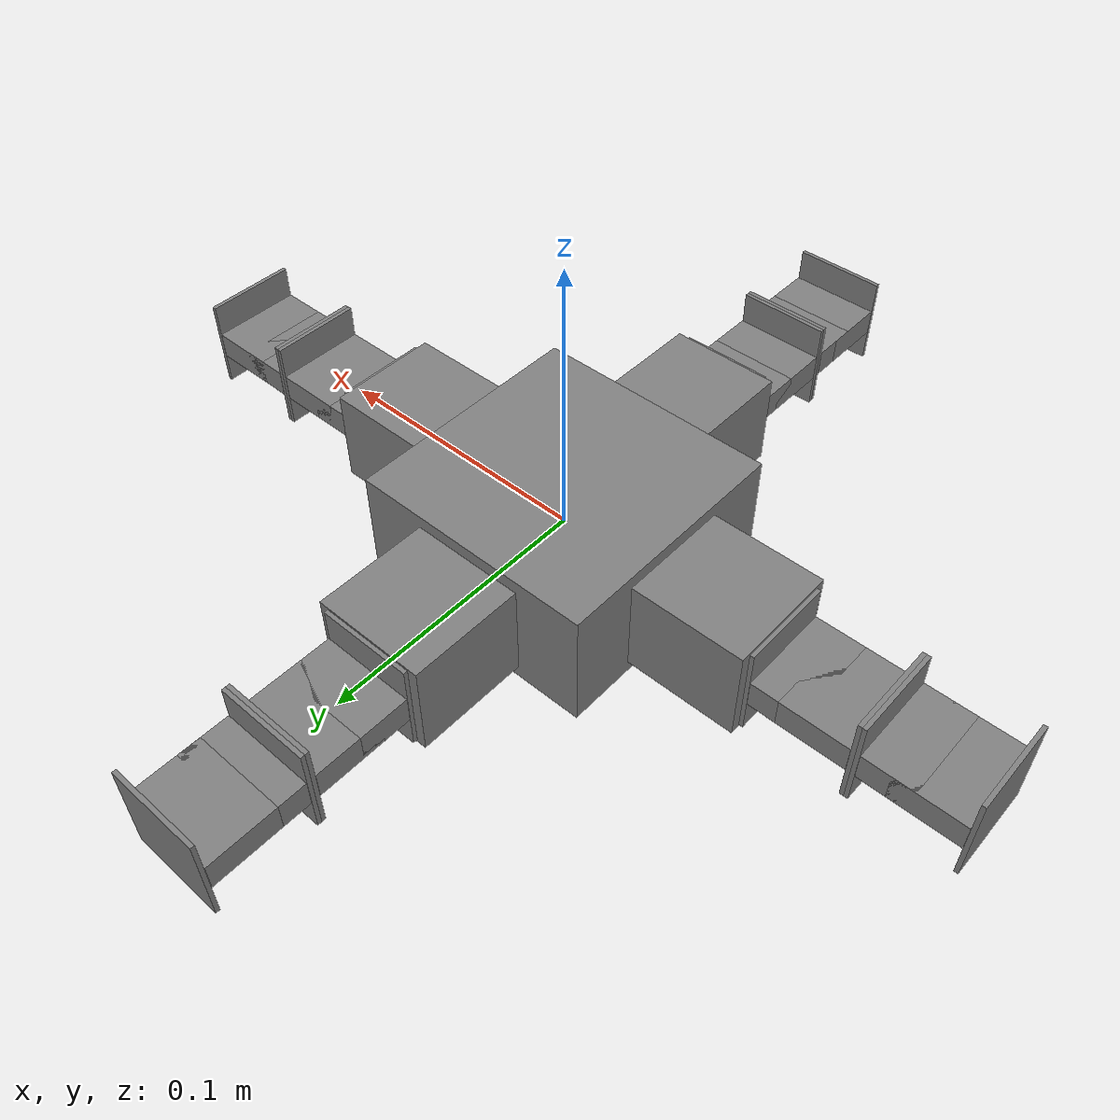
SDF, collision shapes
<?xml version="1.0"?>
<sdf version="1.5"><model name="gen__11"><pose>0.000000e+00 0.000000e+00 0.000000e+00 0.000000e+00 -0.000000e+00 0.000000e+00</pose>
<link name="link_component_Core__box"><pose>8.283941e-20 -1.573949e-18 0.000000e+00 0.000000e+00 -0.000000e+00 0.000000e+00</pose>
<visual name="component_Core__box_visual"><pose>-8.283941e-20 1.573949e-18 0.000000e+00 0.000000e+00 -0.000000e+00 0.000000e+00</pose>
<material><ambient>0.50 0.50 0.50 1.00</ambient><diffuse>0.50 0.50 0.50 1.00</diffuse><specular>0.1 0.1 0.1 1.00</specular></material>
<geometry><mesh><uri>model://tol_robot/meshes/CoreComponent.dae</uri></mesh></geometry></visual>
<collision name="component_Core__box_collision"><pose>-8.283941e-20 1.573949e-18 0.000000e+00 0.000000e+00 -0.000000e+00 0.000000e+00</pose>
<surface><contact><ode><kd>9.000000e+04</kd><kp>2.000000e+06</kp></ode></contact>
<friction><ode><mu>1.000000e+00</mu>
<mu2>1.000000e+00</mu2>
<slip1>1.000000e-02</slip1>
<slip2>1.000000e-02</slip2></ode>
<bullet><friction>1.000000e+00</friction>
<friction2>1.000000e+00</friction2></bullet></friction></surface>
<geometry><box><size>9.000000e-02 9.000000e-02 4.500000e-02</size></box></geometry></collision>
<sensor type="imu" name="Core-imu_sensor"><pose>-8.283941e-20 1.573949e-18 0.000000e+00 0.000000e+00 -0.000000e+00 0.000000e+00</pose>
<update_rate>1.000000e+01</update_rate>
<always_on>1</always_on></sensor>
<visual name="component_Brick11__box_visual"><pose>-8.283941e-20 -6.550000e-02 0.000000e+00 0.000000e+00 -0.000000e+00 3.141593e+00</pose>
<material><ambient>0.50 0.50 0.50 1.00</ambient><diffuse>0.50 0.50 0.50 1.00</diffuse><specular>0.1 0.1 0.1 1.00</specular></material>
<geometry><mesh><uri>model://tol_robot/meshes/FixedBrick.dae</uri></mesh></geometry></visual>
<collision name="component_Brick11__box_collision"><pose>-8.283941e-20 -6.550000e-02 0.000000e+00 0.000000e+00 -0.000000e+00 3.141593e+00</pose>
<surface><contact><ode><kd>9.000000e+04</kd><kp>2.000000e+06</kp></ode></contact>
<friction><ode><mu>1.000000e+00</mu>
<mu2>1.000000e+00</mu2>
<slip1>1.000000e-02</slip1>
<slip2>1.000000e-02</slip2></ode>
<bullet><friction>1.000000e+00</friction>
<friction2>1.000000e+00</friction2></bullet></friction></surface>
<geometry><box><size>4.100000e-02 4.100000e-02 3.550000e-02</size></box></geometry></collision>
<visual name="component_Hinge11__root_visual"><pose>-8.283941e-20 -8.675000e-02 0.000000e+00 0.000000e+00 0.000000e+00 -1.570796e+00</pose>
<material><ambient>0.50 0.50 0.50 1.00</ambient><diffuse>0.50 0.50 0.50 1.00</diffuse><specular>0.1 0.1 0.1 1.00</specular></material>
<geometry><box><size>1.500000e-03 3.400000e-02 3.400000e-02</size></box></geometry></visual>
<collision name="component_Hinge11__root_collision"><pose>-8.283941e-20 -8.675000e-02 0.000000e+00 0.000000e+00 0.000000e+00 -1.570796e+00</pose>
<surface><contact><ode><kd>9.000000e+04</kd><kp>2.000000e+06</kp></ode></contact>
<friction><ode><mu>1.000000e+00</mu>
<mu2>1.000000e+00</mu2>
<slip1>1.000000e-02</slip1>
<slip2>1.000000e-02</slip2></ode>
<bullet><friction>1.000000e+00</friction>
<friction2>1.000000e+00</friction2></bullet></friction></surface>
<geometry><box><size>1.500000e-03 3.400000e-02 3.400000e-02</size></box></geometry></collision>
<visual name="component_Hinge11__frame_frame_visual"><pose>-8.283941e-20 -9.660000e-02 0.000000e+00 0.000000e+00 0.000000e+00 -1.570796e+00</pose>
<material><ambient>0.50 0.50 0.50 1.00</ambient><diffuse>0.50 0.50 0.50 1.00</diffuse><specular>0.1 0.1 0.1 1.00</specular></material>
<geometry><mesh><uri>model://tol_robot/meshes/ActiveHinge_Frame.dae</uri></mesh></geometry></visual>
<collision name="component_Hinge11__frame_collision"><pose>-8.283941e-20 -9.660000e-02 0.000000e+00 0.000000e+00 0.000000e+00 -1.570796e+00</pose>
<surface><contact><ode><kd>9.000000e+04</kd><kp>2.000000e+06</kp></ode></contact>
<friction><ode><mu>1.000000e+00</mu>
<mu2>1.000000e+00</mu2>
<slip1>1.000000e-02</slip1>
<slip2>1.000000e-02</slip2></ode>
<bullet><friction>1.000000e+00</friction>
<friction2>1.000000e+00</friction2></bullet></friction></surface>
<geometry><box><size>1.800000e-02 3.400000e-02 1.000000e-02</size></box></geometry></collision>
<visual name="component_Brick21__box_visual"><pose>-8.283941e-20 6.550000e-02 0.000000e+00 0.000000e+00 -0.000000e+00 0.000000e+00</pose>
<material><ambient>0.50 0.50 0.50 1.00</ambient><diffuse>0.50 0.50 0.50 1.00</diffuse><specular>0.1 0.1 0.1 1.00</specular></material>
<geometry><mesh><uri>model://tol_robot/meshes/FixedBrick.dae</uri></mesh></geometry></visual>
<collision name="component_Brick21__box_collision"><pose>-8.283941e-20 6.550000e-02 0.000000e+00 0.000000e+00 -0.000000e+00 0.000000e+00</pose>
<surface><contact><ode><kd>9.000000e+04</kd><kp>2.000000e+06</kp></ode></contact>
<friction><ode><mu>1.000000e+00</mu>
<mu2>1.000000e+00</mu2>
<slip1>1.000000e-02</slip1>
<slip2>1.000000e-02</slip2></ode>
<bullet><friction>1.000000e+00</friction>
<friction2>1.000000e+00</friction2></bullet></friction></surface>
<geometry><box><size>4.100000e-02 4.100000e-02 3.550000e-02</size></box></geometry></collision>
<visual name="component_Hinge21__root_visual"><pose>-8.283941e-20 8.675000e-02 0.000000e+00 0.000000e+00 -0.000000e+00 1.570796e+00</pose>
<material><ambient>0.50 0.50 0.50 1.00</ambient><diffuse>0.50 0.50 0.50 1.00</diffuse><specular>0.1 0.1 0.1 1.00</specular></material>
<geometry><box><size>1.500000e-03 3.400000e-02 3.400000e-02</size></box></geometry></visual>
<collision name="component_Hinge21__root_collision"><pose>-8.283941e-20 8.675000e-02 0.000000e+00 0.000000e+00 -0.000000e+00 1.570796e+00</pose>
<surface><contact><ode><kd>9.000000e+04</kd><kp>2.000000e+06</kp></ode></contact>
<friction><ode><mu>1.000000e+00</mu>
<mu2>1.000000e+00</mu2>
<slip1>1.000000e-02</slip1>
<slip2>1.000000e-02</slip2></ode>
<bullet><friction>1.000000e+00</friction>
<friction2>1.000000e+00</friction2></bullet></friction></surface>
<geometry><box><size>1.500000e-03 3.400000e-02 3.400000e-02</size></box></geometry></collision>
<visual name="component_Hinge21__frame_frame_visual"><pose>-8.283941e-20 9.660000e-02 0.000000e+00 0.000000e+00 -0.000000e+00 1.570796e+00</pose>
<material><ambient>0.50 0.50 0.50 1.00</ambient><diffuse>0.50 0.50 0.50 1.00</diffuse><specular>0.1 0.1 0.1 1.00</specular></material>
<geometry><mesh><uri>model://tol_robot/meshes/ActiveHinge_Frame.dae</uri></mesh></geometry></visual>
<collision name="component_Hinge21__frame_collision"><pose>-8.283941e-20 9.660000e-02 0.000000e+00 0.000000e+00 -0.000000e+00 1.570796e+00</pose>
<surface><contact><ode><kd>9.000000e+04</kd><kp>2.000000e+06</kp></ode></contact>
<friction><ode><mu>1.000000e+00</mu>
<mu2>1.000000e+00</mu2>
<slip1>1.000000e-02</slip1>
<slip2>1.000000e-02</slip2></ode>
<bullet><friction>1.000000e+00</friction>
<friction2>1.000000e+00</friction2></bullet></friction></surface>
<geometry><box><size>1.800000e-02 3.400000e-02 1.000000e-02</size></box></geometry></collision>
<visual name="component_Brick31__box_visual"><pose>6.550000e-02 1.573949e-18 0.000000e+00 0.000000e+00 0.000000e+00 -1.570796e+00</pose>
<material><ambient>0.50 0.50 0.50 1.00</ambient><diffuse>0.50 0.50 0.50 1.00</diffuse><specular>0.1 0.1 0.1 1.00</specular></material>
<geometry><mesh><uri>model://tol_robot/meshes/FixedBrick.dae</uri></mesh></geometry></visual>
<collision name="component_Brick31__box_collision"><pose>6.550000e-02 1.573949e-18 0.000000e+00 0.000000e+00 0.000000e+00 -1.570796e+00</pose>
<surface><contact><ode><kd>9.000000e+04</kd><kp>2.000000e+06</kp></ode></contact>
<friction><ode><mu>1.000000e+00</mu>
<mu2>1.000000e+00</mu2>
<slip1>1.000000e-02</slip1>
<slip2>1.000000e-02</slip2></ode>
<bullet><friction>1.000000e+00</friction>
<friction2>1.000000e+00</friction2></bullet></friction></surface>
<geometry><box><size>4.100000e-02 4.100000e-02 3.550000e-02</size></box></geometry></collision>
<visual name="component_Hinge31__root_visual"><pose>8.675000e-02 1.573949e-18 0.000000e+00 0.000000e+00 -0.000000e+00 0.000000e+00</pose>
<material><ambient>0.50 0.50 0.50 1.00</ambient><diffuse>0.50 0.50 0.50 1.00</diffuse><specular>0.1 0.1 0.1 1.00</specular></material>
<geometry><box><size>1.500000e-03 3.400000e-02 3.400000e-02</size></box></geometry></visual>
<collision name="component_Hinge31__root_collision"><pose>8.675000e-02 1.573949e-18 0.000000e+00 0.000000e+00 -0.000000e+00 0.000000e+00</pose>
<surface><contact><ode><kd>9.000000e+04</kd><kp>2.000000e+06</kp></ode></contact>
<friction><ode><mu>1.000000e+00</mu>
<mu2>1.000000e+00</mu2>
<slip1>1.000000e-02</slip1>
<slip2>1.000000e-02</slip2></ode>
<bullet><friction>1.000000e+00</friction>
<friction2>1.000000e+00</friction2></bullet></friction></surface>
<geometry><box><size>1.500000e-03 3.400000e-02 3.400000e-02</size></box></geometry></collision>
<visual name="component_Hinge31__frame_frame_visual"><pose>9.660000e-02 1.573949e-18 0.000000e+00 0.000000e+00 -0.000000e+00 0.000000e+00</pose>
<material><ambient>0.50 0.50 0.50 1.00</ambient><diffuse>0.50 0.50 0.50 1.00</diffuse><specular>0.1 0.1 0.1 1.00</specular></material>
<geometry><mesh><uri>model://tol_robot/meshes/ActiveHinge_Frame.dae</uri></mesh></geometry></visual>
<collision name="component_Hinge31__frame_collision"><pose>9.660000e-02 1.573949e-18 0.000000e+00 0.000000e+00 -0.000000e+00 0.000000e+00</pose>
<surface><contact><ode><kd>9.000000e+04</kd><kp>2.000000e+06</kp></ode></contact>
<friction><ode><mu>1.000000e+00</mu>
<mu2>1.000000e+00</mu2>
<slip1>1.000000e-02</slip1>
<slip2>1.000000e-02</slip2></ode>
<bullet><friction>1.000000e+00</friction>
<friction2>1.000000e+00</friction2></bullet></friction></surface>
<geometry><box><size>1.800000e-02 3.400000e-02 1.000000e-02</size></box></geometry></collision>
<visual name="component_Brick41__box_visual"><pose>-6.550000e-02 1.573949e-18 0.000000e+00 0.000000e+00 -0.000000e+00 1.570796e+00</pose>
<material><ambient>0.50 0.50 0.50 1.00</ambient><diffuse>0.50 0.50 0.50 1.00</diffuse><specular>0.1 0.1 0.1 1.00</specular></material>
<geometry><mesh><uri>model://tol_robot/meshes/FixedBrick.dae</uri></mesh></geometry></visual>
<collision name="component_Brick41__box_collision"><pose>-6.550000e-02 1.573949e-18 0.000000e+00 0.000000e+00 -0.000000e+00 1.570796e+00</pose>
<surface><contact><ode><kd>9.000000e+04</kd><kp>2.000000e+06</kp></ode></contact>
<friction><ode><mu>1.000000e+00</mu>
<mu2>1.000000e+00</mu2>
<slip1>1.000000e-02</slip1>
<slip2>1.000000e-02</slip2></ode>
<bullet><friction>1.000000e+00</friction>
<friction2>1.000000e+00</friction2></bullet></friction></surface>
<geometry><box><size>4.100000e-02 4.100000e-02 3.550000e-02</size></box></geometry></collision>
<visual name="component_Hinge41__root_visual"><pose>-8.675000e-02 1.573949e-18 0.000000e+00 0.000000e+00 -0.000000e+00 3.141593e+00</pose>
<material><ambient>0.50 0.50 0.50 1.00</ambient><diffuse>0.50 0.50 0.50 1.00</diffuse><specular>0.1 0.1 0.1 1.00</specular></material>
<geometry><box><size>1.500000e-03 3.400000e-02 3.400000e-02</size></box></geometry></visual>
<collision name="component_Hinge41__root_collision"><pose>-8.675000e-02 1.573949e-18 0.000000e+00 0.000000e+00 -0.000000e+00 3.141593e+00</pose>
<surface><contact><ode><kd>9.000000e+04</kd><kp>2.000000e+06</kp></ode></contact>
<friction><ode><mu>1.000000e+00</mu>
<mu2>1.000000e+00</mu2>
<slip1>1.000000e-02</slip1>
<slip2>1.000000e-02</slip2></ode>
<bullet><friction>1.000000e+00</friction>
<friction2>1.000000e+00</friction2></bullet></friction></surface>
<geometry><box><size>1.500000e-03 3.400000e-02 3.400000e-02</size></box></geometry></collision>
<visual name="component_Hinge41__frame_frame_visual"><pose>-9.660000e-02 1.573949e-18 0.000000e+00 0.000000e+00 -0.000000e+00 3.141593e+00</pose>
<material><ambient>0.50 0.50 0.50 1.00</ambient><diffuse>0.50 0.50 0.50 1.00</diffuse><specular>0.1 0.1 0.1 1.00</specular></material>
<geometry><mesh><uri>model://tol_robot/meshes/ActiveHinge_Frame.dae</uri></mesh></geometry></visual>
<collision name="component_Hinge41__frame_collision"><pose>-9.660000e-02 1.573949e-18 0.000000e+00 0.000000e+00 -0.000000e+00 3.141593e+00</pose>
<surface><contact><ode><kd>9.000000e+04</kd><kp>2.000000e+06</kp></ode></contact>
<friction><ode><mu>1.000000e+00</mu>
<mu2>1.000000e+00</mu2>
<slip1>1.000000e-02</slip1>
<slip2>1.000000e-02</slip2></ode>
<bullet><friction>1.000000e+00</friction>
<friction2>1.000000e+00</friction2></bullet></friction></surface>
<geometry><box><size>1.800000e-02 3.400000e-02 1.000000e-02</size></box></geometry></collision>
<inertial><mass>1.636000e-01</mass><inertia><ixx>3.055971e-04</ixx><ixy>9.403955e-38</ixy><ixz>0.000000e+00</ixz><iyy>3.055971e-04</iyy><iyz>0.000000e+00</iyz><izz>5.667748e-04</izz></inertia></inertial>
<self_collide>True</self_collide></link>
<link name="link_component_Hinge11__servo"><pose>0.000000e+00 -1.190748e-01 0.000000e+00 0.000000e+00 -0.000000e+00 0.000000e+00</pose>
<visual name="component_Hinge11__servo_servo_visual"><pose>0.000000e+00 9.224793e-03 0.000000e+00 0.000000e+00 0.000000e+00 -1.570796e+00</pose>
<material><ambient>0.50 0.50 0.50 1.00</ambient><diffuse>0.50 0.50 0.50 1.00</diffuse><specular>0.1 0.1 0.1 1.00</specular></material>
<geometry><mesh><uri>model://tol_robot/meshes/ActiveCardanHinge_Servo_Holder.dae</uri></mesh></geometry></visual>
<collision name="component_Hinge11__servo_collision"><pose>0.000000e+00 9.224793e-03 0.000000e+00 0.000000e+00 0.000000e+00 -1.570796e+00</pose>
<surface><contact><ode><kd>9.000000e+04</kd><kp>2.000000e+06</kp></ode></contact>
<friction><ode><mu>1.000000e+00</mu>
<mu2>1.000000e+00</mu2>
<slip1>1.000000e-02</slip1>
<slip2>1.000000e-02</slip2></ode>
<bullet><friction>1.000000e+00</friction>
<friction2>1.000000e+00</friction2></bullet></friction></surface>
<geometry><box><size>2.450000e-02 3.400000e-02 1.000000e-02</size></box></geometry></collision>
<collision name="component_Hinge11__tail_collision"><pose>0.000000e+00 -3.875207e-03 0.000000e+00 0.000000e+00 0.000000e+00 -1.570796e+00</pose>
<surface><contact><ode><kd>9.000000e+04</kd><kp>2.000000e+06</kp></ode></contact>
<friction><ode><mu>1.000000e+00</mu>
<mu2>1.000000e+00</mu2>
<slip1>1.000000e-02</slip1>
<slip2>1.000000e-02</slip2></ode>
<bullet><friction>1.000000e+00</friction>
<friction2>1.000000e+00</friction2></bullet></friction></surface>
<geometry><box><size>1.500000e-03 3.400000e-02 3.400000e-02</size></box></geometry></collision>
<visual name="component_Hinge12__root_visual"><pose>0.000000e+00 -5.375207e-03 0.000000e+00 0.000000e+00 0.000000e+00 -1.570796e+00</pose>
<material><ambient>0.50 0.50 0.50 1.00</ambient><diffuse>0.50 0.50 0.50 1.00</diffuse><specular>0.1 0.1 0.1 1.00</specular></material>
<geometry><box><size>1.500000e-03 3.400000e-02 3.400000e-02</size></box></geometry></visual>
<collision name="component_Hinge12__root_collision"><pose>0.000000e+00 -5.375207e-03 0.000000e+00 0.000000e+00 0.000000e+00 -1.570796e+00</pose>
<surface><contact><ode><kd>9.000000e+04</kd><kp>2.000000e+06</kp></ode></contact>
<friction><ode><mu>1.000000e+00</mu>
<mu2>1.000000e+00</mu2>
<slip1>1.000000e-02</slip1>
<slip2>1.000000e-02</slip2></ode>
<bullet><friction>1.000000e+00</friction>
<friction2>1.000000e+00</friction2></bullet></friction></surface>
<geometry><box><size>1.500000e-03 3.400000e-02 3.400000e-02</size></box></geometry></collision>
<visual name="component_Hinge12__frame_frame_visual"><pose>0.000000e+00 -1.522521e-02 0.000000e+00 0.000000e+00 0.000000e+00 -1.570796e+00</pose>
<material><ambient>0.50 0.50 0.50 1.00</ambient><diffuse>0.50 0.50 0.50 1.00</diffuse><specular>0.1 0.1 0.1 1.00</specular></material>
<geometry><mesh><uri>model://tol_robot/meshes/ActiveHinge_Frame.dae</uri></mesh></geometry></visual>
<collision name="component_Hinge12__frame_collision"><pose>0.000000e+00 -1.522521e-02 0.000000e+00 0.000000e+00 0.000000e+00 -1.570796e+00</pose>
<surface><contact><ode><kd>9.000000e+04</kd><kp>2.000000e+06</kp></ode></contact>
<friction><ode><mu>1.000000e+00</mu>
<mu2>1.000000e+00</mu2>
<slip1>1.000000e-02</slip1>
<slip2>1.000000e-02</slip2></ode>
<bullet><friction>1.000000e+00</friction>
<friction2>1.000000e+00</friction2></bullet></friction></surface>
<geometry><box><size>1.800000e-02 3.400000e-02 1.000000e-02</size></box></geometry></collision>
<inertial><mass>2.420000e-02</mass><inertia><ixx>3.270289e-06</ixx><ixy>0.000000e+00</ixy><ixz>0.000000e+00</ixz><iyy>3.764933e-06</iyy><iyz>0.000000e+00</iyz><izz>4.167889e-06</izz></inertia></inertial>
<self_collide>True</self_collide></link>
<link name="link_component_Hinge12__servo"><pose>0.000000e+00 -1.532813e-01 0.000000e+00 0.000000e+00 -0.000000e+00 0.000000e+00</pose>
<visual name="component_Hinge12__servo_servo_visual"><pose>0.000000e+00 5.731250e-03 0.000000e+00 0.000000e+00 0.000000e+00 -1.570796e+00</pose>
<material><ambient>0.50 0.50 0.50 1.00</ambient><diffuse>0.50 0.50 0.50 1.00</diffuse><specular>0.1 0.1 0.1 1.00</specular></material>
<geometry><mesh><uri>model://tol_robot/meshes/ActiveCardanHinge_Servo_Holder.dae</uri></mesh></geometry></visual>
<collision name="component_Hinge12__servo_collision"><pose>0.000000e+00 5.731250e-03 0.000000e+00 0.000000e+00 0.000000e+00 -1.570796e+00</pose>
<surface><contact><ode><kd>9.000000e+04</kd><kp>2.000000e+06</kp></ode></contact>
<friction><ode><mu>1.000000e+00</mu>
<mu2>1.000000e+00</mu2>
<slip1>1.000000e-02</slip1>
<slip2>1.000000e-02</slip2></ode>
<bullet><friction>1.000000e+00</friction>
<friction2>1.000000e+00</friction2></bullet></friction></surface>
<geometry><box><size>2.450000e-02 3.400000e-02 1.000000e-02</size></box></geometry></collision>
<collision name="component_Hinge12__tail_collision"><pose>0.000000e+00 -7.368750e-03 0.000000e+00 0.000000e+00 0.000000e+00 -1.570796e+00</pose>
<surface><contact><ode><kd>9.000000e+04</kd><kp>2.000000e+06</kp></ode></contact>
<friction><ode><mu>1.000000e+00</mu>
<mu2>1.000000e+00</mu2>
<slip1>1.000000e-02</slip1>
<slip2>1.000000e-02</slip2></ode>
<bullet><friction>1.000000e+00</friction>
<friction2>1.000000e+00</friction2></bullet></friction></surface>
<geometry><box><size>1.500000e-03 3.400000e-02 3.400000e-02</size></box></geometry></collision>
<inertial><mass>1.600000e-02</mass><inertia><ixx>1.876548e-06</ixx><ixy>0.000000e+00</ixy><ixz>0.000000e+00</ixz><iyy>2.290667e-06</iyy><iyz>0.000000e+00</iyz><izz>2.668548e-06</izz></inertia></inertial>
<self_collide>True</self_collide></link>
<joint type="revolute" name="joint_link_component_Hinge12__servo_link_component_Hinge11__servo"><pose>0.000000e+00 -2.022521e-02 0.000000e+00 0.000000e+00 0.000000e+00 -1.570796e+00</pose>
<parent>link_component_Hinge12__servo</parent>
<child>link_component_Hinge11__servo</child>
<axis><xyz>0.000000e+00 1.000000e+00 0.000000e+00</xyz>
<use_parent_model_frame>0</use_parent_model_frame>
<limit><lower>-7.853982e-01</lower>
<upper>7.853982e-01</upper>
<effort>1.765800e-01</effort>
<velocity>5.235988e+00</velocity></limit></axis></joint>
<joint type="revolute" name="joint_link_component_Hinge11__servo_link_component_Core__box"><pose>-8.283941e-20 -1.016000e-01 0.000000e+00 0.000000e+00 0.000000e+00 -1.570796e+00</pose>
<parent>link_component_Hinge11__servo</parent>
<child>link_component_Core__box</child>
<axis><xyz>0.000000e+00 1.000000e+00 0.000000e+00</xyz>
<use_parent_model_frame>0</use_parent_model_frame>
<limit><lower>-7.853982e-01</lower>
<upper>7.853982e-01</upper>
<effort>1.765800e-01</effort>
<velocity>5.235988e+00</velocity></limit></axis></joint>
<link name="link_component_Hinge21__servo"><pose>0.000000e+00 1.190748e-01 0.000000e+00 0.000000e+00 -0.000000e+00 0.000000e+00</pose>
<visual name="component_Hinge21__servo_servo_visual"><pose>0.000000e+00 -9.224793e-03 0.000000e+00 0.000000e+00 -0.000000e+00 1.570796e+00</pose>
<material><ambient>0.50 0.50 0.50 1.00</ambient><diffuse>0.50 0.50 0.50 1.00</diffuse><specular>0.1 0.1 0.1 1.00</specular></material>
<geometry><mesh><uri>model://tol_robot/meshes/ActiveCardanHinge_Servo_Holder.dae</uri></mesh></geometry></visual>
<collision name="component_Hinge21__servo_collision"><pose>0.000000e+00 -9.224793e-03 0.000000e+00 0.000000e+00 -0.000000e+00 1.570796e+00</pose>
<surface><contact><ode><kd>9.000000e+04</kd><kp>2.000000e+06</kp></ode></contact>
<friction><ode><mu>1.000000e+00</mu>
<mu2>1.000000e+00</mu2>
<slip1>1.000000e-02</slip1>
<slip2>1.000000e-02</slip2></ode>
<bullet><friction>1.000000e+00</friction>
<friction2>1.000000e+00</friction2></bullet></friction></surface>
<geometry><box><size>2.450000e-02 3.400000e-02 1.000000e-02</size></box></geometry></collision>
<collision name="component_Hinge21__tail_collision"><pose>0.000000e+00 3.875207e-03 0.000000e+00 0.000000e+00 -0.000000e+00 1.570796e+00</pose>
<surface><contact><ode><kd>9.000000e+04</kd><kp>2.000000e+06</kp></ode></contact>
<friction><ode><mu>1.000000e+00</mu>
<mu2>1.000000e+00</mu2>
<slip1>1.000000e-02</slip1>
<slip2>1.000000e-02</slip2></ode>
<bullet><friction>1.000000e+00</friction>
<friction2>1.000000e+00</friction2></bullet></friction></surface>
<geometry><box><size>1.500000e-03 3.400000e-02 3.400000e-02</size></box></geometry></collision>
<visual name="component_Hinge22__root_visual"><pose>0.000000e+00 5.375207e-03 0.000000e+00 0.000000e+00 -0.000000e+00 1.570796e+00</pose>
<material><ambient>0.50 0.50 0.50 1.00</ambient><diffuse>0.50 0.50 0.50 1.00</diffuse><specular>0.1 0.1 0.1 1.00</specular></material>
<geometry><box><size>1.500000e-03 3.400000e-02 3.400000e-02</size></box></geometry></visual>
<collision name="component_Hinge22__root_collision"><pose>0.000000e+00 5.375207e-03 0.000000e+00 0.000000e+00 -0.000000e+00 1.570796e+00</pose>
<surface><contact><ode><kd>9.000000e+04</kd><kp>2.000000e+06</kp></ode></contact>
<friction><ode><mu>1.000000e+00</mu>
<mu2>1.000000e+00</mu2>
<slip1>1.000000e-02</slip1>
<slip2>1.000000e-02</slip2></ode>
<bullet><friction>1.000000e+00</friction>
<friction2>1.000000e+00</friction2></bullet></friction></surface>
<geometry><box><size>1.500000e-03 3.400000e-02 3.400000e-02</size></box></geometry></collision>
<visual name="component_Hinge22__frame_frame_visual"><pose>0.000000e+00 1.522521e-02 0.000000e+00 0.000000e+00 -0.000000e+00 1.570796e+00</pose>
<material><ambient>0.50 0.50 0.50 1.00</ambient><diffuse>0.50 0.50 0.50 1.00</diffuse><specular>0.1 0.1 0.1 1.00</specular></material>
<geometry><mesh><uri>model://tol_robot/meshes/ActiveHinge_Frame.dae</uri></mesh></geometry></visual>
<collision name="component_Hinge22__frame_collision"><pose>0.000000e+00 1.522521e-02 0.000000e+00 0.000000e+00 -0.000000e+00 1.570796e+00</pose>
<surface><contact><ode><kd>9.000000e+04</kd><kp>2.000000e+06</kp></ode></contact>
<friction><ode><mu>1.000000e+00</mu>
<mu2>1.000000e+00</mu2>
<slip1>1.000000e-02</slip1>
<slip2>1.000000e-02</slip2></ode>
<bullet><friction>1.000000e+00</friction>
<friction2>1.000000e+00</friction2></bullet></friction></surface>
<geometry><box><size>1.800000e-02 3.400000e-02 1.000000e-02</size></box></geometry></collision>
<inertial><mass>2.420000e-02</mass><inertia><ixx>3.270289e-06</ixx><ixy>0.000000e+00</ixy><ixz>0.000000e+00</ixz><iyy>3.764933e-06</iyy><iyz>0.000000e+00</iyz><izz>4.167889e-06</izz></inertia></inertial>
<self_collide>True</self_collide></link>
<link name="link_component_Hinge22__servo"><pose>0.000000e+00 1.532813e-01 0.000000e+00 0.000000e+00 -0.000000e+00 0.000000e+00</pose>
<visual name="component_Hinge22__servo_servo_visual"><pose>0.000000e+00 -5.731250e-03 0.000000e+00 0.000000e+00 -0.000000e+00 1.570796e+00</pose>
<material><ambient>0.50 0.50 0.50 1.00</ambient><diffuse>0.50 0.50 0.50 1.00</diffuse><specular>0.1 0.1 0.1 1.00</specular></material>
<geometry><mesh><uri>model://tol_robot/meshes/ActiveCardanHinge_Servo_Holder.dae</uri></mesh></geometry></visual>
<collision name="component_Hinge22__servo_collision"><pose>0.000000e+00 -5.731250e-03 0.000000e+00 0.000000e+00 -0.000000e+00 1.570796e+00</pose>
<surface><contact><ode><kd>9.000000e+04</kd><kp>2.000000e+06</kp></ode></contact>
<friction><ode><mu>1.000000e+00</mu>
<mu2>1.000000e+00</mu2>
<slip1>1.000000e-02</slip1>
<slip2>1.000000e-02</slip2></ode>
<bullet><friction>1.000000e+00</friction>
<friction2>1.000000e+00</friction2></bullet></friction></surface>
<geometry><box><size>2.450000e-02 3.400000e-02 1.000000e-02</size></box></geometry></collision>
<collision name="component_Hinge22__tail_collision"><pose>0.000000e+00 7.368750e-03 0.000000e+00 0.000000e+00 -0.000000e+00 1.570796e+00</pose>
<surface><contact><ode><kd>9.000000e+04</kd><kp>2.000000e+06</kp></ode></contact>
<friction><ode><mu>1.000000e+00</mu>
<mu2>1.000000e+00</mu2>
<slip1>1.000000e-02</slip1>
<slip2>1.000000e-02</slip2></ode>
<bullet><friction>1.000000e+00</friction>
<friction2>1.000000e+00</friction2></bullet></friction></surface>
<geometry><box><size>1.500000e-03 3.400000e-02 3.400000e-02</size></box></geometry></collision>
<inertial><mass>1.600000e-02</mass><inertia><ixx>1.876548e-06</ixx><ixy>0.000000e+00</ixy><ixz>0.000000e+00</ixz><iyy>2.290667e-06</iyy><iyz>0.000000e+00</iyz><izz>2.668548e-06</izz></inertia></inertial>
<self_collide>True</self_collide></link>
<joint type="revolute" name="joint_link_component_Hinge22__servo_link_component_Hinge21__servo"><pose>0.000000e+00 2.022521e-02 0.000000e+00 0.000000e+00 -0.000000e+00 1.570796e+00</pose>
<parent>link_component_Hinge22__servo</parent>
<child>link_component_Hinge21__servo</child>
<axis><xyz>0.000000e+00 1.000000e+00 0.000000e+00</xyz>
<use_parent_model_frame>0</use_parent_model_frame>
<limit><lower>-7.853982e-01</lower>
<upper>7.853982e-01</upper>
<effort>1.765800e-01</effort>
<velocity>5.235988e+00</velocity></limit></axis></joint>
<joint type="revolute" name="joint_link_component_Hinge21__servo_link_component_Core__box"><pose>-8.283941e-20 1.016000e-01 0.000000e+00 0.000000e+00 -0.000000e+00 1.570796e+00</pose>
<parent>link_component_Hinge21__servo</parent>
<child>link_component_Core__box</child>
<axis><xyz>0.000000e+00 1.000000e+00 0.000000e+00</xyz>
<use_parent_model_frame>0</use_parent_model_frame>
<limit><lower>-7.853982e-01</lower>
<upper>7.853982e-01</upper>
<effort>1.765800e-01</effort>
<velocity>5.235988e+00</velocity></limit></axis></joint>
<link name="link_component_Hinge31__servo"><pose>1.190748e-01 0.000000e+00 0.000000e+00 0.000000e+00 -0.000000e+00 0.000000e+00</pose>
<visual name="component_Hinge31__servo_servo_visual"><pose>-9.224793e-03 0.000000e+00 0.000000e+00 0.000000e+00 -0.000000e+00 0.000000e+00</pose>
<material><ambient>0.50 0.50 0.50 1.00</ambient><diffuse>0.50 0.50 0.50 1.00</diffuse><specular>0.1 0.1 0.1 1.00</specular></material>
<geometry><mesh><uri>model://tol_robot/meshes/ActiveCardanHinge_Servo_Holder.dae</uri></mesh></geometry></visual>
<collision name="component_Hinge31__servo_collision"><pose>-9.224793e-03 0.000000e+00 0.000000e+00 0.000000e+00 -0.000000e+00 0.000000e+00</pose>
<surface><contact><ode><kd>9.000000e+04</kd><kp>2.000000e+06</kp></ode></contact>
<friction><ode><mu>1.000000e+00</mu>
<mu2>1.000000e+00</mu2>
<slip1>1.000000e-02</slip1>
<slip2>1.000000e-02</slip2></ode>
<bullet><friction>1.000000e+00</friction>
<friction2>1.000000e+00</friction2></bullet></friction></surface>
<geometry><box><size>2.450000e-02 3.400000e-02 1.000000e-02</size></box></geometry></collision>
<collision name="component_Hinge31__tail_collision"><pose>3.875207e-03 0.000000e+00 0.000000e+00 0.000000e+00 -0.000000e+00 0.000000e+00</pose>
<surface><contact><ode><kd>9.000000e+04</kd><kp>2.000000e+06</kp></ode></contact>
<friction><ode><mu>1.000000e+00</mu>
<mu2>1.000000e+00</mu2>
<slip1>1.000000e-02</slip1>
<slip2>1.000000e-02</slip2></ode>
<bullet><friction>1.000000e+00</friction>
<friction2>1.000000e+00</friction2></bullet></friction></surface>
<geometry><box><size>1.500000e-03 3.400000e-02 3.400000e-02</size></box></geometry></collision>
<visual name="component_Hinge32__root_visual"><pose>5.375207e-03 0.000000e+00 0.000000e+00 0.000000e+00 -0.000000e+00 0.000000e+00</pose>
<material><ambient>0.50 0.50 0.50 1.00</ambient><diffuse>0.50 0.50 0.50 1.00</diffuse><specular>0.1 0.1 0.1 1.00</specular></material>
<geometry><box><size>1.500000e-03 3.400000e-02 3.400000e-02</size></box></geometry></visual>
<collision name="component_Hinge32__root_collision"><pose>5.375207e-03 0.000000e+00 0.000000e+00 0.000000e+00 -0.000000e+00 0.000000e+00</pose>
<surface><contact><ode><kd>9.000000e+04</kd><kp>2.000000e+06</kp></ode></contact>
<friction><ode><mu>1.000000e+00</mu>
<mu2>1.000000e+00</mu2>
<slip1>1.000000e-02</slip1>
<slip2>1.000000e-02</slip2></ode>
<bullet><friction>1.000000e+00</friction>
<friction2>1.000000e+00</friction2></bullet></friction></surface>
<geometry><box><size>1.500000e-03 3.400000e-02 3.400000e-02</size></box></geometry></collision>
<visual name="component_Hinge32__frame_frame_visual"><pose>1.522521e-02 0.000000e+00 0.000000e+00 0.000000e+00 -0.000000e+00 0.000000e+00</pose>
<material><ambient>0.50 0.50 0.50 1.00</ambient><diffuse>0.50 0.50 0.50 1.00</diffuse><specular>0.1 0.1 0.1 1.00</specular></material>
<geometry><mesh><uri>model://tol_robot/meshes/ActiveHinge_Frame.dae</uri></mesh></geometry></visual>
<collision name="component_Hinge32__frame_collision"><pose>1.522521e-02 0.000000e+00 0.000000e+00 0.000000e+00 -0.000000e+00 0.000000e+00</pose>
<surface><contact><ode><kd>9.000000e+04</kd><kp>2.000000e+06</kp></ode></contact>
<friction><ode><mu>1.000000e+00</mu>
<mu2>1.000000e+00</mu2>
<slip1>1.000000e-02</slip1>
<slip2>1.000000e-02</slip2></ode>
<bullet><friction>1.000000e+00</friction>
<friction2>1.000000e+00</friction2></bullet></friction></surface>
<geometry><box><size>1.800000e-02 3.400000e-02 1.000000e-02</size></box></geometry></collision>
<inertial><mass>2.420000e-02</mass><inertia><ixx>3.764933e-06</ixx><ixy>0.000000e+00</ixy><ixz>0.000000e+00</ixz><iyy>3.270289e-06</iyy><iyz>0.000000e+00</iyz><izz>4.167889e-06</izz></inertia></inertial>
<self_collide>True</self_collide></link>
<link name="link_component_Hinge32__servo"><pose>1.532813e-01 0.000000e+00 0.000000e+00 0.000000e+00 -0.000000e+00 0.000000e+00</pose>
<visual name="component_Hinge32__servo_servo_visual"><pose>-5.731250e-03 0.000000e+00 0.000000e+00 0.000000e+00 -0.000000e+00 0.000000e+00</pose>
<material><ambient>0.50 0.50 0.50 1.00</ambient><diffuse>0.50 0.50 0.50 1.00</diffuse><specular>0.1 0.1 0.1 1.00</specular></material>
<geometry><mesh><uri>model://tol_robot/meshes/ActiveCardanHinge_Servo_Holder.dae</uri></mesh></geometry></visual>
<collision name="component_Hinge32__servo_collision"><pose>-5.731250e-03 0.000000e+00 0.000000e+00 0.000000e+00 -0.000000e+00 0.000000e+00</pose>
<surface><contact><ode><kd>9.000000e+04</kd><kp>2.000000e+06</kp></ode></contact>
<friction><ode><mu>1.000000e+00</mu>
<mu2>1.000000e+00</mu2>
<slip1>1.000000e-02</slip1>
<slip2>1.000000e-02</slip2></ode>
<bullet><friction>1.000000e+00</friction>
<friction2>1.000000e+00</friction2></bullet></friction></surface>
<geometry><box><size>2.450000e-02 3.400000e-02 1.000000e-02</size></box></geometry></collision>
<collision name="component_Hinge32__tail_collision"><pose>7.368750e-03 0.000000e+00 0.000000e+00 0.000000e+00 -0.000000e+00 0.000000e+00</pose>
<surface><contact><ode><kd>9.000000e+04</kd><kp>2.000000e+06</kp></ode></contact>
<friction><ode><mu>1.000000e+00</mu>
<mu2>1.000000e+00</mu2>
<slip1>1.000000e-02</slip1>
<slip2>1.000000e-02</slip2></ode>
<bullet><friction>1.000000e+00</friction>
<friction2>1.000000e+00</friction2></bullet></friction></surface>
<geometry><box><size>1.500000e-03 3.400000e-02 3.400000e-02</size></box></geometry></collision>
<inertial><mass>1.600000e-02</mass><inertia><ixx>2.290667e-06</ixx><ixy>0.000000e+00</ixy><ixz>0.000000e+00</ixz><iyy>1.876548e-06</iyy><iyz>0.000000e+00</iyz><izz>2.668548e-06</izz></inertia></inertial>
<self_collide>True</self_collide></link>
<joint type="revolute" name="joint_link_component_Hinge32__servo_link_component_Hinge31__servo"><pose>2.022521e-02 0.000000e+00 0.000000e+00 0.000000e+00 -0.000000e+00 0.000000e+00</pose>
<parent>link_component_Hinge32__servo</parent>
<child>link_component_Hinge31__servo</child>
<axis><xyz>0.000000e+00 1.000000e+00 0.000000e+00</xyz>
<use_parent_model_frame>0</use_parent_model_frame>
<limit><lower>-7.853982e-01</lower>
<upper>7.853982e-01</upper>
<effort>1.765800e-01</effort>
<velocity>5.235988e+00</velocity></limit></axis></joint>
<joint type="revolute" name="joint_link_component_Hinge31__servo_link_component_Core__box"><pose>1.016000e-01 1.573949e-18 0.000000e+00 0.000000e+00 -0.000000e+00 0.000000e+00</pose>
<parent>link_component_Hinge31__servo</parent>
<child>link_component_Core__box</child>
<axis><xyz>0.000000e+00 1.000000e+00 0.000000e+00</xyz>
<use_parent_model_frame>0</use_parent_model_frame>
<limit><lower>-7.853982e-01</lower>
<upper>7.853982e-01</upper>
<effort>1.765800e-01</effort>
<velocity>5.235988e+00</velocity></limit></axis></joint>
<link name="link_component_Hinge41__servo"><pose>-1.190748e-01 0.000000e+00 0.000000e+00 0.000000e+00 -0.000000e+00 0.000000e+00</pose>
<visual name="component_Hinge41__servo_servo_visual"><pose>9.224793e-03 0.000000e+00 0.000000e+00 0.000000e+00 -0.000000e+00 3.141593e+00</pose>
<material><ambient>0.50 0.50 0.50 1.00</ambient><diffuse>0.50 0.50 0.50 1.00</diffuse><specular>0.1 0.1 0.1 1.00</specular></material>
<geometry><mesh><uri>model://tol_robot/meshes/ActiveCardanHinge_Servo_Holder.dae</uri></mesh></geometry></visual>
<collision name="component_Hinge41__servo_collision"><pose>9.224793e-03 0.000000e+00 0.000000e+00 0.000000e+00 -0.000000e+00 3.141593e+00</pose>
<surface><contact><ode><kd>9.000000e+04</kd><kp>2.000000e+06</kp></ode></contact>
<friction><ode><mu>1.000000e+00</mu>
<mu2>1.000000e+00</mu2>
<slip1>1.000000e-02</slip1>
<slip2>1.000000e-02</slip2></ode>
<bullet><friction>1.000000e+00</friction>
<friction2>1.000000e+00</friction2></bullet></friction></surface>
<geometry><box><size>2.450000e-02 3.400000e-02 1.000000e-02</size></box></geometry></collision>
<collision name="component_Hinge41__tail_collision"><pose>-3.875207e-03 0.000000e+00 0.000000e+00 0.000000e+00 -0.000000e+00 3.141593e+00</pose>
<surface><contact><ode><kd>9.000000e+04</kd><kp>2.000000e+06</kp></ode></contact>
<friction><ode><mu>1.000000e+00</mu>
<mu2>1.000000e+00</mu2>
<slip1>1.000000e-02</slip1>
<slip2>1.000000e-02</slip2></ode>
<bullet><friction>1.000000e+00</friction>
<friction2>1.000000e+00</friction2></bullet></friction></surface>
<geometry><box><size>1.500000e-03 3.400000e-02 3.400000e-02</size></box></geometry></collision>
<visual name="component_Hinge42__root_visual"><pose>-5.375207e-03 0.000000e+00 0.000000e+00 0.000000e+00 -0.000000e+00 3.141593e+00</pose>
<material><ambient>0.50 0.50 0.50 1.00</ambient><diffuse>0.50 0.50 0.50 1.00</diffuse><specular>0.1 0.1 0.1 1.00</specular></material>
<geometry><box><size>1.500000e-03 3.400000e-02 3.400000e-02</size></box></geometry></visual>
<collision name="component_Hinge42__root_collision"><pose>-5.375207e-03 0.000000e+00 0.000000e+00 0.000000e+00 -0.000000e+00 3.141593e+00</pose>
<surface><contact><ode><kd>9.000000e+04</kd><kp>2.000000e+06</kp></ode></contact>
<friction><ode><mu>1.000000e+00</mu>
<mu2>1.000000e+00</mu2>
<slip1>1.000000e-02</slip1>
<slip2>1.000000e-02</slip2></ode>
<bullet><friction>1.000000e+00</friction>
<friction2>1.000000e+00</friction2></bullet></friction></surface>
<geometry><box><size>1.500000e-03 3.400000e-02 3.400000e-02</size></box></geometry></collision>
<visual name="component_Hinge42__frame_frame_visual"><pose>-1.522521e-02 0.000000e+00 0.000000e+00 0.000000e+00 -0.000000e+00 3.141593e+00</pose>
<material><ambient>0.50 0.50 0.50 1.00</ambient><diffuse>0.50 0.50 0.50 1.00</diffuse><specular>0.1 0.1 0.1 1.00</specular></material>
<geometry><mesh><uri>model://tol_robot/meshes/ActiveHinge_Frame.dae</uri></mesh></geometry></visual>
<collision name="component_Hinge42__frame_collision"><pose>-1.522521e-02 0.000000e+00 0.000000e+00 0.000000e+00 -0.000000e+00 3.141593e+00</pose>
<surface><contact><ode><kd>9.000000e+04</kd><kp>2.000000e+06</kp></ode></contact>
<friction><ode><mu>1.000000e+00</mu>
<mu2>1.000000e+00</mu2>
<slip1>1.000000e-02</slip1>
<slip2>1.000000e-02</slip2></ode>
<bullet><friction>1.000000e+00</friction>
<friction2>1.000000e+00</friction2></bullet></friction></surface>
<geometry><box><size>1.800000e-02 3.400000e-02 1.000000e-02</size></box></geometry></collision>
<inertial><mass>2.420000e-02</mass><inertia><ixx>3.764933e-06</ixx><ixy>0.000000e+00</ixy><ixz>0.000000e+00</ixz><iyy>3.270289e-06</iyy><iyz>0.000000e+00</iyz><izz>4.167889e-06</izz></inertia></inertial>
<self_collide>True</self_collide></link>
<link name="link_component_Hinge42__servo"><pose>-1.532813e-01 0.000000e+00 0.000000e+00 0.000000e+00 -0.000000e+00 0.000000e+00</pose>
<visual name="component_Hinge42__servo_servo_visual"><pose>5.731250e-03 0.000000e+00 0.000000e+00 0.000000e+00 -0.000000e+00 3.141593e+00</pose>
<material><ambient>0.50 0.50 0.50 1.00</ambient><diffuse>0.50 0.50 0.50 1.00</diffuse><specular>0.1 0.1 0.1 1.00</specular></material>
<geometry><mesh><uri>model://tol_robot/meshes/ActiveCardanHinge_Servo_Holder.dae</uri></mesh></geometry></visual>
<collision name="component_Hinge42__servo_collision"><pose>5.731250e-03 0.000000e+00 0.000000e+00 0.000000e+00 -0.000000e+00 3.141593e+00</pose>
<surface><contact><ode><kd>9.000000e+04</kd><kp>2.000000e+06</kp></ode></contact>
<friction><ode><mu>1.000000e+00</mu>
<mu2>1.000000e+00</mu2>
<slip1>1.000000e-02</slip1>
<slip2>1.000000e-02</slip2></ode>
<bullet><friction>1.000000e+00</friction>
<friction2>1.000000e+00</friction2></bullet></friction></surface>
<geometry><box><size>2.450000e-02 3.400000e-02 1.000000e-02</size></box></geometry></collision>
<collision name="component_Hinge42__tail_collision"><pose>-7.368750e-03 0.000000e+00 0.000000e+00 0.000000e+00 -0.000000e+00 3.141593e+00</pose>
<surface><contact><ode><kd>9.000000e+04</kd><kp>2.000000e+06</kp></ode></contact>
<friction><ode><mu>1.000000e+00</mu>
<mu2>1.000000e+00</mu2>
<slip1>1.000000e-02</slip1>
<slip2>1.000000e-02</slip2></ode>
<bullet><friction>1.000000e+00</friction>
<friction2>1.000000e+00</friction2></bullet></friction></surface>
<geometry><box><size>1.500000e-03 3.400000e-02 3.400000e-02</size></box></geometry></collision>
<inertial><mass>1.600000e-02</mass><inertia><ixx>2.290667e-06</ixx><ixy>0.000000e+00</ixy><ixz>0.000000e+00</ixz><iyy>1.876548e-06</iyy><iyz>0.000000e+00</iyz><izz>2.668548e-06</izz></inertia></inertial>
<self_collide>True</self_collide></link>
<joint type="revolute" name="joint_link_component_Hinge42__servo_link_component_Hinge41__servo"><pose>-2.022521e-02 0.000000e+00 0.000000e+00 0.000000e+00 -0.000000e+00 3.141593e+00</pose>
<parent>link_component_Hinge42__servo</parent>
<child>link_component_Hinge41__servo</child>
<axis><xyz>0.000000e+00 1.000000e+00 0.000000e+00</xyz>
<use_parent_model_frame>0</use_parent_model_frame>
<limit><lower>-7.853982e-01</lower>
<upper>7.853982e-01</upper>
<effort>1.765800e-01</effort>
<velocity>5.235988e+00</velocity></limit></axis></joint>
<joint type="revolute" name="joint_link_component_Hinge41__servo_link_component_Core__box"><pose>-1.016000e-01 1.573949e-18 0.000000e+00 0.000000e+00 -0.000000e+00 3.141593e+00</pose>
<parent>link_component_Hinge41__servo</parent>
<child>link_component_Core__box</child>
<axis><xyz>0.000000e+00 1.000000e+00 0.000000e+00</xyz>
<use_parent_model_frame>0</use_parent_model_frame>
<limit><lower>-7.853982e-01</lower>
<upper>7.853982e-01</upper>
<effort>1.765800e-01</effort>
<velocity>5.235988e+00</velocity></limit></axis></joint>
<plugin name="robot_controller" filename="libtolrobotcontrol.so"><rv:robot_config xmlns:rv="https://github.com/ElteHupkes/revolve"><rv:update_rate>1.000000e+01</rv:update_rate>
<rv:brain><rv:neuron layer="input" type="Input" id="Core-in-0" part_id="Core" />
<rv:neuron layer="input" type="Input" id="Core-in-1" part_id="Core" />
<rv:neuron layer="input" type="Input" id="Core-in-2" part_id="Core" />
<rv:neuron layer="input" type="Input" id="Core-in-3" part_id="Core" />
<rv:neuron layer="input" type="Input" id="Core-in-4" part_id="Core" />
<rv:neuron layer="input" type="Input" id="Core-in-5" part_id="Core" />
<rv:neuron layer="output" type="Simple" id="Hinge11-out-0" part_id="Hinge11"><rv:bias>-7.237088e-01</rv:bias>
<rv:gain>5.000000e-01</rv:gain></rv:neuron>
<rv:neuron layer="output" type="Simple" id="Hinge12-out-0" part_id="Hinge12"><rv:bias>0.000000e+00</rv:bias>
<rv:gain>4.744281e-01</rv:gain></rv:neuron>
<rv:neuron layer="output" type="Simple" id="Hinge21-out-0" part_id="Hinge21"><rv:bias>0.000000e+00</rv:bias>
<rv:gain>5.000000e-01</rv:gain></rv:neuron>
<rv:neuron layer="output" type="Simple" id="Hinge22-out-0" part_id="Hinge22"><rv:bias>0.000000e+00</rv:bias>
<rv:gain>5.000000e-01</rv:gain></rv:neuron>
<rv:neuron layer="output" type="Simple" id="Hinge31-out-0" part_id="Hinge31"><rv:bias>8.555955e-01</rv:bias>
<rv:gain>5.000000e-01</rv:gain></rv:neuron>
<rv:neuron layer="output" type="Simple" id="Hinge32-out-0" part_id="Hinge32"><rv:bias>0.000000e+00</rv:bias>
<rv:gain>5.000000e-01</rv:gain></rv:neuron>
<rv:neuron layer="output" type="Simple" id="Hinge41-out-0" part_id="Hinge41"><rv:bias>0.000000e+00</rv:bias>
<rv:gain>5.000000e-01</rv:gain></rv:neuron>
<rv:neuron layer="output" type="Simple" id="Hinge42-out-0" part_id="Hinge42"><rv:bias>0.000000e+00</rv:bias>
<rv:gain>9.030747e-01</rv:gain></rv:neuron>
<rv:neural_connection src="Core-in-0" dst="Hinge22-out-0" weight="3.729660e-01" /></rv:brain>
<rv:sensor link="link_component_Core__box" sensor="Core-imu_sensor" id="Core__Core-imu_sensor" part_id="Core" type="imu" />
<rv:motor joint="joint_link_component_Hinge11__servo_link_component_Core__box" type="position" id="Hinge11__rotate" part_id="Hinge11"><rv:pid><rv:p>9.000000e-01</rv:p>
<rv:i>0.000000e+00</rv:i>
<rv:d>0.000000e+00</rv:d>
<rv:i_max>0.000000e+00</rv:i_max>
<rv:i_min>0.000000e+00</rv:i_min></rv:pid></rv:motor>
<rv:motor joint="joint_link_component_Hinge12__servo_link_component_Hinge11__servo" type="position" id="Hinge12__rotate" part_id="Hinge12"><rv:pid><rv:p>9.000000e-01</rv:p>
<rv:i>0.000000e+00</rv:i>
<rv:d>0.000000e+00</rv:d>
<rv:i_max>0.000000e+00</rv:i_max>
<rv:i_min>0.000000e+00</rv:i_min></rv:pid></rv:motor>
<rv:motor joint="joint_link_component_Hinge21__servo_link_component_Core__box" type="position" id="Hinge21__rotate" part_id="Hinge21"><rv:pid><rv:p>9.000000e-01</rv:p>
<rv:i>0.000000e+00</rv:i>
<rv:d>0.000000e+00</rv:d>
<rv:i_max>0.000000e+00</rv:i_max>
<rv:i_min>0.000000e+00</rv:i_min></rv:pid></rv:motor>
<rv:motor joint="joint_link_component_Hinge22__servo_link_component_Hinge21__servo" type="position" id="Hinge22__rotate" part_id="Hinge22"><rv:pid><rv:p>9.000000e-01</rv:p>
<rv:i>0.000000e+00</rv:i>
<rv:d>0.000000e+00</rv:d>
<rv:i_max>0.000000e+00</rv:i_max>
<rv:i_min>0.000000e+00</rv:i_min></rv:pid></rv:motor>
<rv:motor joint="joint_link_component_Hinge31__servo_link_component_Core__box" type="position" id="Hinge31__rotate" part_id="Hinge31"><rv:pid><rv:p>9.000000e-01</rv:p>
<rv:i>0.000000e+00</rv:i>
<rv:d>0.000000e+00</rv:d>
<rv:i_max>0.000000e+00</rv:i_max>
<rv:i_min>0.000000e+00</rv:i_min></rv:pid></rv:motor>
<rv:motor joint="joint_link_component_Hinge32__servo_link_component_Hinge31__servo" type="position" id="Hinge32__rotate" part_id="Hinge32"><rv:pid><rv:p>9.000000e-01</rv:p>
<rv:i>0.000000e+00</rv:i>
<rv:d>0.000000e+00</rv:d>
<rv:i_max>0.000000e+00</rv:i_max>
<rv:i_min>0.000000e+00</rv:i_min></rv:pid></rv:motor>
<rv:motor joint="joint_link_component_Hinge41__servo_link_component_Core__box" type="position" id="Hinge41__rotate" part_id="Hinge41"><rv:pid><rv:p>9.000000e-01</rv:p>
<rv:i>0.000000e+00</rv:i>
<rv:d>0.000000e+00</rv:d>
<rv:i_max>0.000000e+00</rv:i_max>
<rv:i_min>0.000000e+00</rv:i_min></rv:pid></rv:motor>
<rv:motor joint="joint_link_component_Hinge42__servo_link_component_Hinge41__servo" type="position" id="Hinge42__rotate" part_id="Hinge42"><rv:pid><rv:p>9.000000e-01</rv:p>
<rv:i>0.000000e+00</rv:i>
<rv:d>0.000000e+00</rv:d>
<rv:i_max>0.000000e+00</rv:i_max>
<rv:i_min>0.000000e+00</rv:i_min></rv:pid></rv:motor></rv:robot_config></plugin>
<static>0</static></model></sdf>
